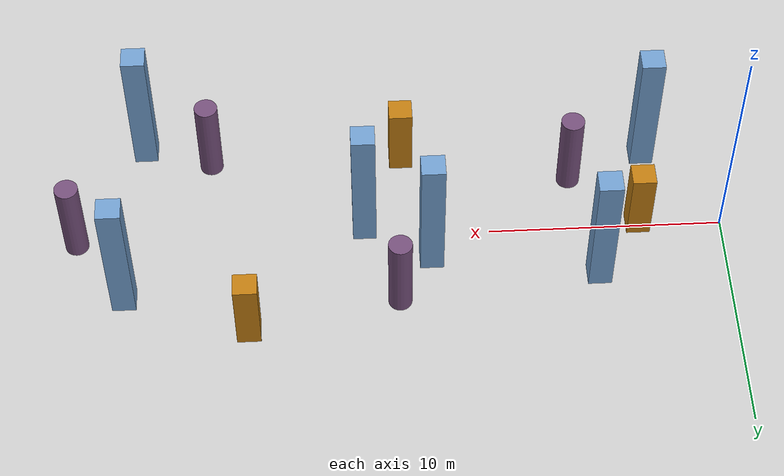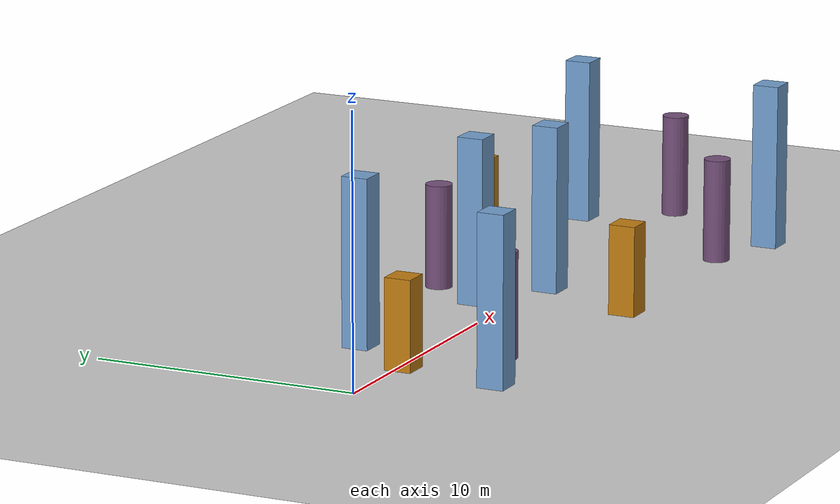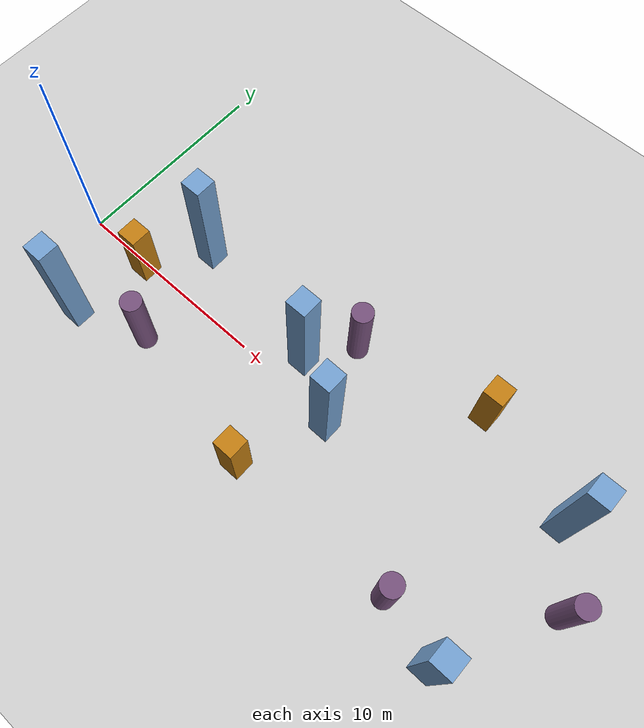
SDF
<sdf version="1.7">
 <world name="default">
  <light name="sun" type="directional">
   <pose>0 0 10 0 -0 0</pose>
   <diffuse>0.8 0.8 0.8 1</diffuse>
   <specular>0.2 0.2 0.2 1</specular>
   <attenuation>
    <range>1000</range>
    <constant>0.9</constant>
    <linear>0.01</linear>
    <quadratic>0.001</quadratic>
   </attenuation>
   <direction>-0.5 0.1 -0.9</direction>
   <spot><inner_angle>0</inner_angle><outer_angle>0</outer_angle><falloff>0</falloff></spot>
  </light>
  <model name="ground_plane">
   <static>1</static>
   <link name="link">
    <collision name="collision">
     <geometry><plane><normal>0 0 1</normal><size>100 100</size></plane></geometry>
     <surface>
      <contact><collide_bitmask>65535</collide_bitmask></contact>
      <friction><ode><mu>100</mu><mu2>50</mu2></ode></friction>
     </surface>
    </collision>
    <visual name="visual">
     <cast_shadows>0</cast_shadows>
     <geometry><plane><normal>0 0 1</normal><size>100 100</size></plane></geometry>
     <material>
      <script><uri>file://media/materials/scripts/gazebo.material</uri><name>Gazebo/Grey</name></script>
     </material>
    </visual>
   </link>
  </model>
  <gravity>0 0 -9.8</gravity>
  <magnetic_field>6e-06 2.3e-05 -4.2e-05</magnetic_field>
  <atmosphere type="adiabatic"/>
  <physics type="ode">
   <max_step_size>0.001</max_step_size>
   <real_time_factor>1</real_time_factor>
   <real_time_update_rate>1000</real_time_update_rate>
  </physics>
  <scene><ambient>0.4 0.4 0.4 1</ambient><background>0.7 0.7 0.7 1</background><shadows>1</shadows></scene>
  <spherical_coordinates>
   <surface_model>EARTH_WGS84</surface_model>
   <latitude_deg>0</latitude_deg>
   <longitude_deg>0</longitude_deg>
   <elevation>0</elevation>
   <heading_deg>0</heading_deg>
  </spherical_coordinates>
  <model name="unit_box">
   <link name="link">
    <inertial>
     <mass>1</mass>
     <inertia>
      <ixx>0.166667</ixx>
      <ixy>0</ixy>
      <ixz>0</ixz>
      <iyy>0.166667</iyy>
      <iyz>0</iyz>
      <izz>0.166667</izz>
     </inertia>
    </inertial>
    <visual name="visual">
     <geometry><box><size>1 1 3.35931</size></box></geometry>
     <material>
      <script><name>Gazebo/Grey</name><uri>file://media/materials/scripts/gazebo.material</uri></script>
      <shader type="pixel"><normal_map>__default__</normal_map></shader>
      <ambient>0.757 0.49 0.067 1</ambient>
      <diffuse>0.7 0.7 0.7 1</diffuse>
      <specular>0.01 0.01 0.01 1</specular>
      <emissive>0 0 0 1</emissive>
     </material>
    </visual>
    <collision name="collision">
     <geometry><box><size>1 1 3.35931</size></box></geometry>
     <surface>
      <friction>
       <ode><mu>1</mu><mu2>1</mu2><fdir1>0 0 0</fdir1><slip1>0</slip1><slip2>0</slip2></ode>
       <torsional>
        <coefficient>1</coefficient>
        <patch_radius>0</patch_radius>
        <surface_radius>0</surface_radius>
        <use_patch_radius>1</use_patch_radius>
        <ode><slip>0</slip></ode>
       </torsional>
      </friction>
      <bounce><restitution_coefficient>0</restitution_coefficient><threshold>1e+06</threshold></bounce>
      <contact>
       <collide_without_contact>0</collide_without_contact>
       <collide_without_contact_bitmask>1</collide_without_contact_bitmask>
       <collide_bitmask>1</collide_bitmask>
       <ode>
        <soft_cfm>0</soft_cfm>
        <soft_erp>0.2</soft_erp>
        <kp>1e+13</kp>
        <kd>1</kd>
        <max_vel>0.01</max_vel>
        <min_depth>0</min_depth>
       </ode>
       <bullet>
        <split_impulse>1</split_impulse>
        <split_impulse_penetration_threshold>-0.01</split_impulse_penetration_threshold>
        <soft_cfm>0</soft_cfm>
        <soft_erp>0.2</soft_erp>
        <kp>1e+13</kp>
        <kd>1</kd>
       </bullet>
      </contact>
     </surface>
    </collision>
   </link>
   <static>0</static>
   <pose>3.58122 -0.169932 1.67966 -2e-06 -0 -0.00031</pose>
  </model>
  <model name="unit_box_0">
   <link name="link">
    <inertial>
     <mass>1</mass>
     <inertia>
      <ixx>0.166667</ixx>
      <ixy>0</ixy>
      <ixz>0</ixz>
      <iyy>0.166667</iyy>
      <iyz>0</iyz>
      <izz>0.166667</izz>
     </inertia>
    </inertial>
    <visual name="visual">
     <geometry><box><size>1 1 6.25648</size></box></geometry>
     <material>
      <script><name>Gazebo/Grey</name><uri>file://media/materials/scripts/gazebo.material</uri></script>
      <shader type="pixel"><normal_map>__default__</normal_map></shader>
      <ambient>0.447 0.624 0.812 1</ambient>
      <diffuse>0.7 0.7 0.7 1</diffuse>
      <specular>0.01 0.01 0.01 1</specular>
      <emissive>0 0 0 1</emissive>
     </material>
    </visual>
    <collision name="collision">
     <geometry><box><size>1 1 6.25648</size></box></geometry>
     <surface>
      <friction>
       <ode><mu>1</mu><mu2>1</mu2><fdir1>0 0 0</fdir1><slip1>0</slip1><slip2>0</slip2></ode>
       <torsional>
        <coefficient>1</coefficient>
        <patch_radius>0</patch_radius>
        <surface_radius>0</surface_radius>
        <use_patch_radius>1</use_patch_radius>
        <ode><slip>0</slip></ode>
       </torsional>
      </friction>
      <bounce><restitution_coefficient>0</restitution_coefficient><threshold>1e+06</threshold></bounce>
      <contact>
       <collide_without_contact>0</collide_without_contact>
       <collide_without_contact_bitmask>1</collide_without_contact_bitmask>
       <collide_bitmask>1</collide_bitmask>
       <ode>
        <soft_cfm>0</soft_cfm>
        <soft_erp>0.2</soft_erp>
        <kp>1e+13</kp>
        <kd>1</kd>
        <max_vel>0.01</max_vel>
        <min_depth>0</min_depth>
       </ode>
       <bullet>
        <split_impulse>1</split_impulse>
        <split_impulse_penetration_threshold>-0.01</split_impulse_penetration_threshold>
        <soft_cfm>0</soft_cfm>
        <soft_erp>0.2</soft_erp>
        <kp>1e+13</kp>
        <kd>1</kd>
       </bullet>
      </contact>
     </surface>
    </collision>
   </link>
   <static>0</static>
   <pose>5.51161 2.4599 3.12824 -0 -0 -0.001845</pose>
  </model>
  <model name="unit_box_0_clone">
   <link name="link">
    <inertial>
     <mass>1</mass>
     <inertia>
      <ixx>0.166667</ixx>
      <ixy>0</ixy>
      <ixz>0</ixz>
      <iyy>0.166667</iyy>
      <iyz>0</iyz>
      <izz>0.166667</izz>
     </inertia>
    </inertial>
    <visual name="visual">
     <geometry><box><size>1 1 6.25648</size></box></geometry>
     <material>
      <script><name>Gazebo/Grey</name><uri>file://media/materials/scripts/gazebo.material</uri></script>
      <shader type="pixel"><normal_map>__default__</normal_map></shader>
      <ambient>0.447 0.624 0.812 1</ambient>
      <diffuse>0.7 0.7 0.7 1</diffuse>
      <specular>0.01 0.01 0.01 1</specular>
      <emissive>0 0 0 1</emissive>
     </material>
    </visual>
    <collision name="collision">
     <geometry><box><size>1 1 6.25648</size></box></geometry>
     <surface>
      <friction>
       <ode><mu>1</mu><mu2>1</mu2><fdir1>0 0 0</fdir1><slip1>0</slip1><slip2>0</slip2></ode>
       <torsional>
        <coefficient>1</coefficient>
        <patch_radius>0</patch_radius>
        <surface_radius>0</surface_radius>
        <use_patch_radius>1</use_patch_radius>
        <ode><slip>0</slip></ode>
       </torsional>
      </friction>
      <bounce><restitution_coefficient>0</restitution_coefficient><threshold>1e+06</threshold></bounce>
      <contact>
       <collide_without_contact>0</collide_without_contact>
       <collide_without_contact_bitmask>1</collide_without_contact_bitmask>
       <collide_bitmask>1</collide_bitmask>
       <ode>
        <soft_cfm>0</soft_cfm>
        <soft_erp>0.2</soft_erp>
        <kp>1e+13</kp>
        <kd>1</kd>
        <max_vel>0.01</max_vel>
        <min_depth>0</min_depth>
       </ode>
       <bullet>
        <split_impulse>1</split_impulse>
        <split_impulse_penetration_threshold>-0.01</split_impulse_penetration_threshold>
        <soft_cfm>0</soft_cfm>
        <soft_erp>0.2</soft_erp>
        <kp>1e+13</kp>
        <kd>1</kd>
       </bullet>
      </contact>
     </surface>
    </collision>
   </link>
   <static>0</static>
   <pose>2.99979 -3.99951 3.12824 0 -0 -0.002105</pose>
  </model>
  <model name="unit_cylinder_1">
   <link name="link">
    <inertial>
     <mass>1</mass>
     <inertia><ixx>0.145833</ixx><ixy>0</ixy><ixz>0</ixz><iyy>0.145833</iyy><iyz>0</iyz><izz>0.125</izz></inertia>
    </inertial>
    <visual name="visual">
     <geometry><cylinder><radius>0.5</radius><length>3.89585</length></cylinder></geometry>
     <material>
      <script><name>Gazebo/Grey</name><uri>file://media/materials/scripts/gazebo.material</uri></script>
      <shader type="pixel"><normal_map>__default__</normal_map></shader>
      <ambient>0.459 0.314 0.482 1</ambient>
      <diffuse>0.7 0.7 0.7 1</diffuse>
      <specular>0.01 0.01 0.01 1</specular>
      <emissive>0 0 0 1</emissive>
     </material>
    </visual>
    <collision name="collision">
     <geometry><cylinder><radius>0.5</radius><length>3.89585</length></cylinder></geometry>
     <surface>
      <friction>
       <ode><mu>1</mu><mu2>1</mu2><fdir1>0 0 0</fdir1><slip1>0</slip1><slip2>0</slip2></ode>
       <torsional>
        <coefficient>1</coefficient>
        <patch_radius>0</patch_radius>
        <surface_radius>0</surface_radius>
        <use_patch_radius>1</use_patch_radius>
        <ode><slip>0</slip></ode>
       </torsional>
      </friction>
      <bounce><restitution_coefficient>0</restitution_coefficient><threshold>1e+06</threshold></bounce>
      <contact>
       <collide_without_contact>0</collide_without_contact>
       <collide_without_contact_bitmask>1</collide_without_contact_bitmask>
       <collide_bitmask>1</collide_bitmask>
       <ode>
        <soft_cfm>0</soft_cfm>
        <soft_erp>0.2</soft_erp>
        <kp>1e+13</kp>
        <kd>1</kd>
        <max_vel>0.01</max_vel>
        <min_depth>0</min_depth>
       </ode>
       <bullet>
        <split_impulse>1</split_impulse>
        <split_impulse_penetration_threshold>-0.01</split_impulse_penetration_threshold>
        <soft_cfm>0</soft_cfm>
        <soft_erp>0.2</soft_erp>
        <kp>1e+13</kp>
        <kd>1</kd>
       </bullet>
      </contact>
     </surface>
    </collision>
   </link>
   <static>0</static>
   <pose>6.33247 -2.74979 1.94792 0 -0 -0.000103</pose>
  </model>
  <model name="unit_box_0_clone_clone">
   <link name="link">
    <inertial>
     <mass>1</mass>
     <inertia>
      <ixx>0.166667</ixx>
      <ixy>0</ixy>
      <ixz>0</ixz>
      <iyy>0.166667</iyy>
      <iyz>0</iyz>
      <izz>0.166667</izz>
     </inertia>
    </inertial>
    <visual name="visual">
     <geometry><box><size>1 1 6.25648</size></box></geometry>
     <material>
      <script><name>Gazebo/Grey</name><uri>file://media/materials/scripts/gazebo.material</uri></script>
      <shader type="pixel"><normal_map>__default__</normal_map></shader>
      <ambient>0.447 0.624 0.812 1</ambient>
      <diffuse>0.7 0.7 0.7 1</diffuse>
      <specular>0.01 0.01 0.01 1</specular>
      <emissive>0 0 0 1</emissive>
     </material>
    </visual>
    <collision name="collision">
     <geometry><box><size>1 1 6.25648</size></box></geometry>
     <surface>
      <friction>
       <ode><mu>1</mu><mu2>1</mu2><fdir1>0 0 0</fdir1><slip1>0</slip1><slip2>0</slip2></ode>
       <torsional>
        <coefficient>1</coefficient>
        <patch_radius>0</patch_radius>
        <surface_radius>0</surface_radius>
        <use_patch_radius>1</use_patch_radius>
        <ode><slip>0</slip></ode>
       </torsional>
      </friction>
      <bounce><restitution_coefficient>0</restitution_coefficient><threshold>1e+06</threshold></bounce>
      <contact>
       <collide_without_contact>0</collide_without_contact>
       <collide_without_contact_bitmask>1</collide_without_contact_bitmask>
       <collide_bitmask>1</collide_bitmask>
       <ode>
        <soft_cfm>0</soft_cfm>
        <soft_erp>0.2</soft_erp>
        <kp>1e+13</kp>
        <kd>1</kd>
        <max_vel>0.01</max_vel>
        <min_depth>0</min_depth>
       </ode>
       <bullet>
        <split_impulse>1</split_impulse>
        <split_impulse_penetration_threshold>-0.01</split_impulse_penetration_threshold>
        <soft_cfm>0</soft_cfm>
        <soft_erp>0.2</soft_erp>
        <kp>1e+13</kp>
        <kd>1</kd>
       </bullet>
      </contact>
     </surface>
    </collision>
   </link>
   <static>0</static>
   <pose>25.5627 2.88148 3.12824 0 -0 -0.002045</pose>
  </model>
  <model name="unit_box_0_clone_clone_0">
   <link name="link">
    <inertial>
     <mass>1</mass>
     <inertia>
      <ixx>0.166667</ixx>
      <ixy>0</ixy>
      <ixz>0</ixz>
      <iyy>0.166667</iyy>
      <iyz>0</iyz>
      <izz>0.166667</izz>
     </inertia>
    </inertial>
    <visual name="visual">
     <geometry><box><size>1 1 6.25648</size></box></geometry>
     <material>
      <script><name>Gazebo/Grey</name><uri>file://media/materials/scripts/gazebo.material</uri></script>
      <shader type="pixel"><normal_map>__default__</normal_map></shader>
      <ambient>0.447 0.624 0.812 1</ambient>
      <diffuse>0.7 0.7 0.7 1</diffuse>
      <specular>0.01 0.01 0.01 1</specular>
      <emissive>0 0 0 1</emissive>
     </material>
    </visual>
    <collision name="collision">
     <geometry><box><size>1 1 6.25648</size></box></geometry>
     <surface>
      <friction>
       <ode><mu>1</mu><mu2>1</mu2><fdir1>0 0 0</fdir1><slip1>0</slip1><slip2>0</slip2></ode>
       <torsional>
        <coefficient>1</coefficient>
        <patch_radius>0</patch_radius>
        <surface_radius>0</surface_radius>
        <use_patch_radius>1</use_patch_radius>
        <ode><slip>0</slip></ode>
       </torsional>
      </friction>
      <bounce><restitution_coefficient>0</restitution_coefficient><threshold>1e+06</threshold></bounce>
      <contact>
       <collide_without_contact>0</collide_without_contact>
       <collide_without_contact_bitmask>1</collide_without_contact_bitmask>
       <collide_bitmask>1</collide_bitmask>
       <ode>
        <soft_cfm>0</soft_cfm>
        <soft_erp>0.2</soft_erp>
        <kp>1e+13</kp>
        <kd>1</kd>
        <max_vel>0.01</max_vel>
        <min_depth>0</min_depth>
       </ode>
       <bullet>
        <split_impulse>1</split_impulse>
        <split_impulse_penetration_threshold>-0.01</split_impulse_penetration_threshold>
        <soft_cfm>0</soft_cfm>
        <soft_erp>0.2</soft_erp>
        <kp>1e+13</kp>
        <kd>1</kd>
       </bullet>
      </contact>
     </surface>
    </collision>
   </link>
   <static>0</static>
   <pose>12.5594 1.28972 3.12824 0 0 -0.001264</pose>
  </model>
  <model name="unit_box_0_clone_clone_1">
   <link name="link">
    <inertial>
     <mass>1</mass>
     <inertia>
      <ixx>0.166667</ixx>
      <ixy>0</ixy>
      <ixz>0</ixz>
      <iyy>0.166667</iyy>
      <iyz>0</iyz>
      <izz>0.166667</izz>
     </inertia>
    </inertial>
    <visual name="visual">
     <geometry><box><size>1 1 6.25648</size></box></geometry>
     <material>
      <script><name>Gazebo/Grey</name><uri>file://media/materials/scripts/gazebo.material</uri></script>
      <shader type="pixel"><normal_map>__default__</normal_map></shader>
      <ambient>0.447 0.624 0.812 1</ambient>
      <diffuse>0.7 0.7 0.7 1</diffuse>
      <specular>0.01 0.01 0.01 1</specular>
      <emissive>0 0 0 1</emissive>
     </material>
    </visual>
    <collision name="collision">
     <geometry><box><size>1 1 6.25648</size></box></geometry>
     <surface>
      <friction>
       <ode><mu>1</mu><mu2>1</mu2><fdir1>0 0 0</fdir1><slip1>0</slip1><slip2>0</slip2></ode>
       <torsional>
        <coefficient>1</coefficient>
        <patch_radius>0</patch_radius>
        <surface_radius>0</surface_radius>
        <use_patch_radius>1</use_patch_radius>
        <ode><slip>0</slip></ode>
       </torsional>
      </friction>
      <bounce><restitution_coefficient>0</restitution_coefficient><threshold>1e+06</threshold></bounce>
      <contact>
       <collide_without_contact>0</collide_without_contact>
       <collide_without_contact_bitmask>1</collide_without_contact_bitmask>
       <collide_bitmask>1</collide_bitmask>
       <ode>
        <soft_cfm>0</soft_cfm>
        <soft_erp>0.2</soft_erp>
        <kp>1e+13</kp>
        <kd>1</kd>
        <max_vel>0.01</max_vel>
        <min_depth>0</min_depth>
       </ode>
       <bullet>
        <split_impulse>1</split_impulse>
        <split_impulse_penetration_threshold>-0.01</split_impulse_penetration_threshold>
        <soft_cfm>0</soft_cfm>
        <soft_erp>0.2</soft_erp>
        <kp>1e+13</kp>
        <kd>1</kd>
       </bullet>
      </contact>
     </surface>
    </collision>
   </link>
   <static>0</static>
   <pose>15.3525 -0.402649 3.12824 0 -0 -0.005574</pose>
  </model>
  <model name="unit_box_0_clone_clone_2">
   <link name="link">
    <inertial>
     <mass>1</mass>
     <inertia>
      <ixx>0.166667</ixx>
      <ixy>0</ixy>
      <ixz>0</ixz>
      <iyy>0.166667</iyy>
      <iyz>0</iyz>
      <izz>0.166667</izz>
     </inertia>
    </inertial>
    <visual name="visual">
     <geometry><box><size>1 1 6.25648</size></box></geometry>
     <material>
      <script><name>Gazebo/Grey</name><uri>file://media/materials/scripts/gazebo.material</uri></script>
      <shader type="pixel"><normal_map>__default__</normal_map></shader>
      <ambient>0.447 0.624 0.812 1</ambient>
      <diffuse>0.7 0.7 0.7 1</diffuse>
      <specular>0.01 0.01 0.01 1</specular>
      <emissive>0 0 0 1</emissive>
     </material>
    </visual>
    <collision name="collision">
     <geometry><box><size>1 1 6.25648</size></box></geometry>
     <surface>
      <friction>
       <ode><mu>1</mu><mu2>1</mu2><fdir1>0 0 0</fdir1><slip1>0</slip1><slip2>0</slip2></ode>
       <torsional>
        <coefficient>1</coefficient>
        <patch_radius>0</patch_radius>
        <surface_radius>0</surface_radius>
        <use_patch_radius>1</use_patch_radius>
        <ode><slip>0</slip></ode>
       </torsional>
      </friction>
      <bounce><restitution_coefficient>0</restitution_coefficient><threshold>1e+06</threshold></bounce>
      <contact>
       <collide_without_contact>0</collide_without_contact>
       <collide_without_contact_bitmask>1</collide_without_contact_bitmask>
       <collide_bitmask>1</collide_bitmask>
       <ode>
        <soft_cfm>0</soft_cfm>
        <soft_erp>0.2</soft_erp>
        <kp>1e+13</kp>
        <kd>1</kd>
        <max_vel>0.01</max_vel>
        <min_depth>0</min_depth>
       </ode>
       <bullet>
        <split_impulse>1</split_impulse>
        <split_impulse_penetration_threshold>-0.01</split_impulse_penetration_threshold>
        <soft_cfm>0</soft_cfm>
        <soft_erp>0.2</soft_erp>
        <kp>1e+13</kp>
        <kd>1</kd>
       </bullet>
      </contact>
     </surface>
    </collision>
   </link>
   <static>0</static>
   <pose>24.8371 -5.1807 3.12824 0 0 -0.002579</pose>
  </model>
  <model name="unit_box_clone">
   <link name="link">
    <inertial>
     <mass>1</mass>
     <inertia>
      <ixx>0.166667</ixx>
      <ixy>0</ixy>
      <ixz>0</ixz>
      <iyy>0.166667</iyy>
      <iyz>0</iyz>
      <izz>0.166667</izz>
     </inertia>
    </inertial>
    <visual name="visual">
     <geometry><box><size>1 1 3.35931</size></box></geometry>
     <material>
      <script><name>Gazebo/Grey</name><uri>file://media/materials/scripts/gazebo.material</uri></script>
      <shader type="pixel"><normal_map>__default__</normal_map></shader>
      <ambient>0.757 0.49 0.067 1</ambient>
      <diffuse>0.7 0.7 0.7 1</diffuse>
      <specular>0.01 0.01 0.01 1</specular>
      <emissive>0 0 0 1</emissive>
     </material>
    </visual>
    <collision name="collision">
     <geometry><box><size>1 1 3.35931</size></box></geometry>
     <surface>
      <friction>
       <ode><mu>1</mu><mu2>1</mu2><fdir1>0 0 0</fdir1><slip1>0</slip1><slip2>0</slip2></ode>
       <torsional>
        <coefficient>1</coefficient>
        <patch_radius>0</patch_radius>
        <surface_radius>0</surface_radius>
        <use_patch_radius>1</use_patch_radius>
        <ode><slip>0</slip></ode>
       </torsional>
      </friction>
      <bounce><restitution_coefficient>0</restitution_coefficient><threshold>1e+06</threshold></bounce>
      <contact>
       <collide_without_contact>0</collide_without_contact>
       <collide_without_contact_bitmask>1</collide_without_contact_bitmask>
       <collide_bitmask>1</collide_bitmask>
       <ode>
        <soft_cfm>0</soft_cfm>
        <soft_erp>0.2</soft_erp>
        <kp>1e+13</kp>
        <kd>1</kd>
        <max_vel>0.01</max_vel>
        <min_depth>0</min_depth>
       </ode>
       <bullet>
        <split_impulse>1</split_impulse>
        <split_impulse_penetration_threshold>-0.01</split_impulse_penetration_threshold>
        <soft_cfm>0</soft_cfm>
        <soft_erp>0.2</soft_erp>
        <kp>1e+13</kp>
        <kd>1</kd>
       </bullet>
      </contact>
     </surface>
    </collision>
   </link>
   <static>0</static>
   <pose>13.6254 -4.25329 1.67966 -0 -2e-06 2.1e-05</pose>
  </model>
  <model name="unit_box_clone_0">
   <link name="link">
    <inertial>
     <mass>1</mass>
     <inertia>
      <ixx>0.166667</ixx>
      <ixy>0</ixy>
      <ixz>0</ixz>
      <iyy>0.166667</iyy>
      <iyz>0</iyz>
      <izz>0.166667</izz>
     </inertia>
    </inertial>
    <visual name="visual">
     <geometry><box><size>1 1 3.35931</size></box></geometry>
     <material>
      <script><name>Gazebo/Grey</name><uri>file://media/materials/scripts/gazebo.material</uri></script>
      <shader type="pixel"><normal_map>__default__</normal_map></shader>
      <ambient>0.757 0.49 0.067 1</ambient>
      <diffuse>0.7 0.7 0.7 1</diffuse>
      <specular>0.01 0.01 0.01 1</specular>
      <emissive>0 0 0 1</emissive>
     </material>
    </visual>
    <collision name="collision">
     <geometry><box><size>1 1 3.35931</size></box></geometry>
     <surface>
      <friction>
       <ode><mu>1</mu><mu2>1</mu2><fdir1>0 0 0</fdir1><slip1>0</slip1><slip2>0</slip2></ode>
       <torsional>
        <coefficient>1</coefficient>
        <patch_radius>0</patch_radius>
        <surface_radius>0</surface_radius>
        <use_patch_radius>1</use_patch_radius>
        <ode><slip>0</slip></ode>
       </torsional>
      </friction>
      <bounce><restitution_coefficient>0</restitution_coefficient><threshold>1e+06</threshold></bounce>
      <contact>
       <collide_without_contact>0</collide_without_contact>
       <collide_without_contact_bitmask>1</collide_without_contact_bitmask>
       <collide_bitmask>1</collide_bitmask>
       <ode>
        <soft_cfm>0</soft_cfm>
        <soft_erp>0.2</soft_erp>
        <kp>1e+13</kp>
        <kd>1</kd>
        <max_vel>0.01</max_vel>
        <min_depth>0</min_depth>
       </ode>
       <bullet>
        <split_impulse>1</split_impulse>
        <split_impulse_penetration_threshold>-0.01</split_impulse_penetration_threshold>
        <soft_cfm>0</soft_cfm>
        <soft_erp>0.2</soft_erp>
        <kp>1e+13</kp>
        <kd>1</kd>
       </bullet>
      </contact>
     </surface>
    </collision>
   </link>
   <static>0</static>
   <pose>20.339 4.73365 1.67966 2e-06 -0 0.000665</pose>
  </model>
  <model name="unit_cylinder_1_clone">
   <link name="link">
    <inertial>
     <mass>1</mass>
     <inertia><ixx>0.145833</ixx><ixy>0</ixy><ixz>0</ixz><iyy>0.145833</iyy><iyz>0</iyz><izz>0.125</izz></inertia>
    </inertial>
    <visual name="visual">
     <geometry><cylinder><radius>0.5</radius><length>3.89585</length></cylinder></geometry>
     <material>
      <script><name>Gazebo/Grey</name><uri>file://media/materials/scripts/gazebo.material</uri></script>
      <shader type="pixel"><normal_map>__default__</normal_map></shader>
      <ambient>0.459 0.314 0.482 1</ambient>
      <diffuse>0.7 0.7 0.7 1</diffuse>
      <specular>0.01 0.01 0.01 1</specular>
      <emissive>0 0 0 1</emissive>
     </material>
    </visual>
    <collision name="collision">
     <geometry><cylinder><radius>0.5</radius><length>3.89585</length></cylinder></geometry>
     <surface>
      <friction>
       <ode><mu>1</mu><mu2>1</mu2><fdir1>0 0 0</fdir1><slip1>0</slip1><slip2>0</slip2></ode>
       <torsional>
        <coefficient>1</coefficient>
        <patch_radius>0</patch_radius>
        <surface_radius>0</surface_radius>
        <use_patch_radius>1</use_patch_radius>
        <ode><slip>0</slip></ode>
       </torsional>
      </friction>
      <bounce><restitution_coefficient>0</restitution_coefficient><threshold>1e+06</threshold></bounce>
      <contact>
       <collide_without_contact>0</collide_without_contact>
       <collide_without_contact_bitmask>1</collide_without_contact_bitmask>
       <collide_bitmask>1</collide_bitmask>
       <ode>
        <soft_cfm>0</soft_cfm>
        <soft_erp>0.2</soft_erp>
        <kp>1e+13</kp>
        <kd>1</kd>
        <max_vel>0.01</max_vel>
        <min_depth>0</min_depth>
       </ode>
       <bullet>
        <split_impulse>1</split_impulse>
        <split_impulse_penetration_threshold>-0.01</split_impulse_penetration_threshold>
        <soft_cfm>0</soft_cfm>
        <soft_erp>0.2</soft_erp>
        <kp>1e+13</kp>
        <kd>1</kd>
       </bullet>
      </contact>
     </surface>
    </collision>
   </link>
   <static>0</static>
   <pose>13.9894 3.44953 1.94792 0 -0 -0.000174</pose>
  </model>
  <model name="unit_cylinder_1_clone_0">
   <link name="link">
    <inertial>
     <mass>1</mass>
     <inertia><ixx>0.145833</ixx><ixy>0</ixy><ixz>0</ixz><iyy>0.145833</iyy><iyz>0</iyz><izz>0.125</izz></inertia>
    </inertial>
    <visual name="visual">
     <geometry><cylinder><radius>0.5</radius><length>3.89585</length></cylinder></geometry>
     <material>
      <script><name>Gazebo/Grey</name><uri>file://media/materials/scripts/gazebo.material</uri></script>
      <shader type="pixel"><normal_map>__default__</normal_map></shader>
      <ambient>0.459 0.314 0.482 1</ambient>
      <diffuse>0.7 0.7 0.7 1</diffuse>
      <specular>0.01 0.01 0.01 1</specular>
      <emissive>0 0 0 1</emissive>
     </material>
    </visual>
    <collision name="collision">
     <geometry><cylinder><radius>0.5</radius><length>3.89585</length></cylinder></geometry>
     <surface>
      <friction>
       <ode><mu>1</mu><mu2>1</mu2><fdir1>0 0 0</fdir1><slip1>0</slip1><slip2>0</slip2></ode>
       <torsional>
        <coefficient>1</coefficient>
        <patch_radius>0</patch_radius>
        <surface_radius>0</surface_radius>
        <use_patch_radius>1</use_patch_radius>
        <ode><slip>0</slip></ode>
       </torsional>
      </friction>
      <bounce><restitution_coefficient>0</restitution_coefficient><threshold>1e+06</threshold></bounce>
      <contact>
       <collide_without_contact>0</collide_without_contact>
       <collide_without_contact_bitmask>1</collide_without_contact_bitmask>
       <collide_bitmask>1</collide_bitmask>
       <ode>
        <soft_cfm>0</soft_cfm>
        <soft_erp>0.2</soft_erp>
        <kp>1e+13</kp>
        <kd>1</kd>
        <max_vel>0.01</max_vel>
        <min_depth>0</min_depth>
       </ode>
       <bullet>
        <split_impulse>1</split_impulse>
        <split_impulse_penetration_threshold>-0.01</split_impulse_penetration_threshold>
        <soft_cfm>0</soft_cfm>
        <soft_erp>0.2</soft_erp>
        <kp>1e+13</kp>
        <kd>1</kd>
       </bullet>
      </contact>
     </surface>
    </collision>
   </link>
   <static>0</static>
   <pose>21.9517 -4.25992 1.94792 0 -0 -0.000182</pose>
  </model>
  <model name="unit_cylinder_1_clone_1">
   <link name="link">
    <inertial>
     <mass>1</mass>
     <inertia><ixx>0.145833</ixx><ixy>0</ixy><ixz>0</ixz><iyy>0.145833</iyy><iyz>0</iyz><izz>0.125</izz></inertia>
    </inertial>
    <visual name="visual">
     <geometry><cylinder><radius>0.5</radius><length>3.89585</length></cylinder></geometry>
     <material>
      <script><name>Gazebo/Grey</name><uri>file://media/materials/scripts/gazebo.material</uri></script>
      <shader type="pixel"><normal_map>__default__</normal_map></shader>
      <ambient>0.459 0.314 0.482 1</ambient>
      <diffuse>0.7 0.7 0.7 1</diffuse>
      <specular>0.01 0.01 0.01 1</specular>
      <emissive>0 0 0 1</emissive>
     </material>
    </visual>
    <collision name="collision">
     <geometry><cylinder><radius>0.5</radius><length>3.89585</length></cylinder></geometry>
     <surface>
      <friction>
       <ode><mu>1</mu><mu2>1</mu2><fdir1>0 0 0</fdir1><slip1>0</slip1><slip2>0</slip2></ode>
       <torsional>
        <coefficient>1</coefficient>
        <patch_radius>0</patch_radius>
        <surface_radius>0</surface_radius>
        <use_patch_radius>1</use_patch_radius>
        <ode><slip>0</slip></ode>
       </torsional>
      </friction>
      <bounce><restitution_coefficient>0</restitution_coefficient><threshold>1e+06</threshold></bounce>
      <contact>
       <collide_without_contact>0</collide_without_contact>
       <collide_without_contact_bitmask>1</collide_without_contact_bitmask>
       <collide_bitmask>1</collide_bitmask>
       <ode>
        <soft_cfm>0</soft_cfm>
        <soft_erp>0.2</soft_erp>
        <kp>1e+13</kp>
        <kd>1</kd>
        <max_vel>0.01</max_vel>
        <min_depth>0</min_depth>
       </ode>
       <bullet>
        <split_impulse>1</split_impulse>
        <split_impulse_penetration_threshold>-0.01</split_impulse_penetration_threshold>
        <soft_cfm>0</soft_cfm>
        <soft_erp>0.2</soft_erp>
        <kp>1e+13</kp>
        <kd>1</kd>
       </bullet>
      </contact>
     </surface>
    </collision>
   </link>
   <static>0</static>
   <pose>27.6837 -0.104149 1.94792 0 -0 -0.000249</pose>
  </model>
  <plugin name="gazebo_octomap" filename="libBuildOctomapPlugin.so"/>
 </world>
</sdf>
